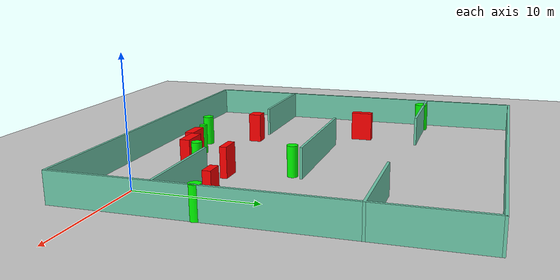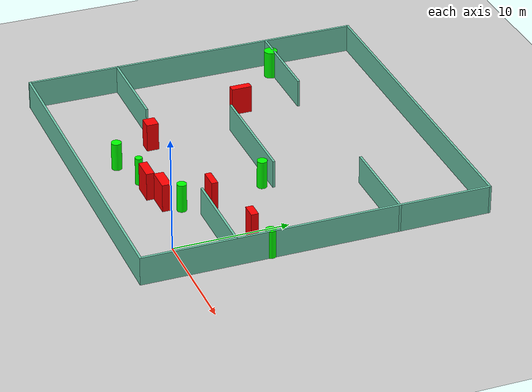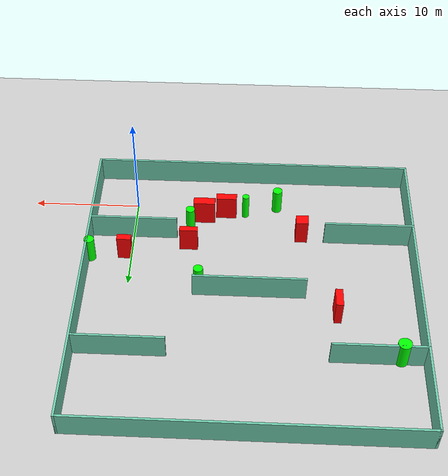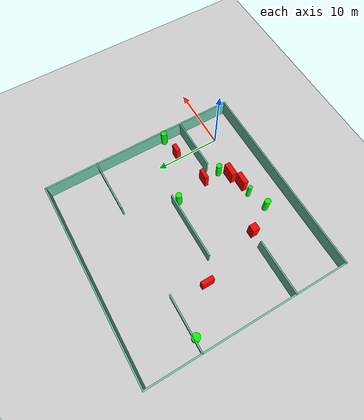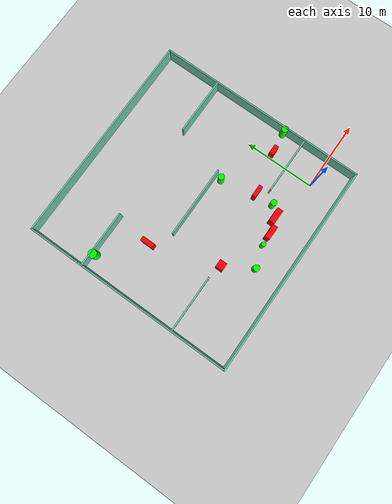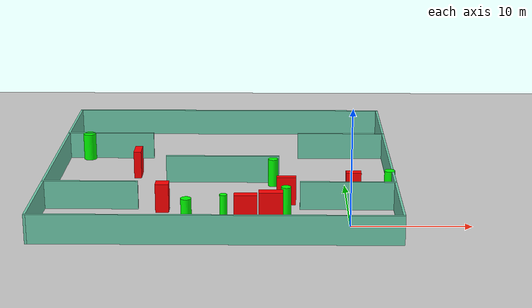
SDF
<sdf version="1.7">
 <world name="default">
  <light name="sun" type="directional">
   <pose>0 0 10 0 -0 0</pose>
   <diffuse>0.8 0.8 0.8 1</diffuse>
   <specular>0.2 0.2 0.2 1</specular>
   <attenuation>
    <range>1000</range>
    <constant>0.9</constant>
    <linear>0.01</linear>
    <quadratic>0.001</quadratic>
   </attenuation>
   <direction>-0.5 0.1 -0.9</direction>
   <spot><inner_angle>0</inner_angle><outer_angle>0</outer_angle><falloff>0</falloff></spot>
  </light>
  <model name="ground_plane">
   <static>1</static>
   <link name="link">
    <collision name="collision">
     <geometry><plane><normal>0 0 1</normal><size>100 100</size></plane></geometry>
     <surface>
      <contact><collide_bitmask>65535</collide_bitmask></contact>
      <friction><ode><mu>100</mu><mu2>50</mu2></ode></friction>
     </surface>
    </collision>
    <visual name="visual">
     <cast_shadows>0</cast_shadows>
     <geometry><plane><normal>0 0 1</normal><size>100 100</size></plane></geometry>
     <material>
      <script><uri>file://media/materials/scripts/gazebo.material</uri><name>Gazebo/Grey</name></script>
     </material>
    </visual>
   </link>
  </model>
  <gravity>0 0 -9.8</gravity>
  <magnetic_field>6e-06 2.3e-05 -4.2e-05</magnetic_field>
  <atmosphere type="adiabatic"/>
  <physics type="ode">
   <max_step_size>0.001</max_step_size>
   <real_time_factor>1</real_time_factor>
   <real_time_update_rate>1000</real_time_update_rate>
  </physics>
  <scene><ambient>0.4 0.4 0.4 1</ambient><background>0.7 0.7 0.7 1</background><shadows>1</shadows></scene>
  <spherical_coordinates>
   <surface_model>EARTH_WGS84</surface_model>
   <latitude_deg>0</latitude_deg>
   <longitude_deg>0</longitude_deg>
   <elevation>0</elevation>
   <heading_deg>0</heading_deg>
  </spherical_coordinates>
  <model name="my_base_walls">
   <link name="Wall_10">
    <collision name="Wall_10_Collision">
     <geometry><box><size>8.2 0.2 2.5</size></box></geometry>
     <pose>0 0 1.25 0 -0 0</pose>
    </collision>
    <visual name="Wall_10_Visual">
     <pose>0 0 1.25 0 -0 0</pose>
     <geometry><box><size>8.2 0.2 2.5</size></box></geometry>
     <material>
      <script><uri>file://media/materials/scripts/gazebo.material</uri><name>Gazebo/Grey</name></script>
      <ambient>0.435294 0.796078 0.67451 1</ambient>
     </material>
     <meta><layer>0</layer></meta>
    </visual>
    <pose>-11 -7 0 0 -0 0</pose>
   </link>
   <link name="Wall_12">
    <collision name="Wall_12_Collision">
     <geometry><box><size>8.2 0.2 2.5</size></box></geometry>
     <pose>0 0 1.25 0 -0 0</pose>
    </collision>
    <visual name="Wall_12_Visual">
     <pose>0 0 1.25 0 -0 0</pose>
     <geometry><box><size>8.2 0.2 2.5</size></box></geometry>
     <material>
      <script><uri>file://media/materials/scripts/gazebo.material</uri><name>Gazebo/Grey</name></script>
      <ambient>0.435294 0.796078 0.67451 1</ambient>
     </material>
     <meta><layer>0</layer></meta>
    </visual>
    <pose>-11 7 0 0 -0 0</pose>
   </link>
   <link name="Wall_14">
    <collision name="Wall_14_Collision">
     <geometry><box><size>8.2 0.2 2.5</size></box></geometry>
     <pose>0 0 1.25 0 -0 0</pose>
    </collision>
    <visual name="Wall_14_Visual">
     <pose>0 0 1.25 0 -0 0</pose>
     <geometry><box><size>8.2 0.2 2.5</size></box></geometry>
     <material>
      <script><uri>file://media/materials/scripts/gazebo.material</uri><name>Gazebo/Grey</name></script>
      <ambient>0.435294 0.796078 0.67451 1</ambient>
     </material>
     <meta><layer>0</layer></meta>
    </visual>
    <pose>11 7 0 0 -0 3.14159</pose>
   </link>
   <link name="Wall_16">
    <collision name="Wall_16_Collision">
     <geometry><box><size>10.2 0.2 2.5</size></box></geometry>
     <pose>0 0 1.25 0 -0 0</pose>
    </collision>
    <visual name="Wall_16_Visual">
     <pose>0 0 1.25 0 -0 0</pose>
     <geometry><box><size>10.2 0.2 2.5</size></box></geometry>
     <material>
      <script><uri>file://media/materials/scripts/gazebo.material</uri><name>Gazebo/Grey</name></script>
      <ambient>0.435294 0.796078 0.67451 1</ambient>
     </material>
     <meta><layer>0</layer></meta>
    </visual>
    <pose>0 0 0 0 -0 3.14159</pose>
   </link>
   <link name="Wall_2">
    <collision name="Wall_2_Collision">
     <geometry><box><size>30.2 0.2 2.5</size></box></geometry>
     <pose>0 0 1.25 0 -0 0</pose>
    </collision>
    <visual name="Wall_2_Visual">
     <pose>0 0 1.25 0 -0 0</pose>
     <geometry><box><size>30.2 0.2 2.5</size></box></geometry>
     <material>
      <script><uri>file://media/materials/scripts/gazebo.material</uri><name>Gazebo/Grey</name></script>
      <ambient>0.435294 0.796078 0.67451 1</ambient>
     </material>
     <meta><layer>0</layer></meta>
    </visual>
    <pose>0 -15 0 0 -0 3.14159</pose>
   </link>
   <link name="Wall_3">
    <collision name="Wall_3_Collision">
     <geometry><box><size>30.2 0.2 2.5</size></box></geometry>
     <pose>0 0 1.25 0 -0 0</pose>
    </collision>
    <visual name="Wall_3_Visual">
     <pose>0 0 1.25 0 -0 0</pose>
     <geometry><box><size>30.2 0.2 2.5</size></box></geometry>
     <material>
      <script><uri>file://media/materials/scripts/gazebo.material</uri><name>Gazebo/Grey</name></script>
      <ambient>0.435294 0.796078 0.67451 1</ambient>
     </material>
     <meta><layer>0</layer></meta>
    </visual>
    <pose>-15 0 0 0 -0 1.5708</pose>
   </link>
   <link name="Wall_4">
    <collision name="Wall_4_Collision">
     <geometry><box><size>30.2 0.2 2.5</size></box></geometry>
     <pose>0 0 1.25 0 -0 0</pose>
    </collision>
    <visual name="Wall_4_Visual">
     <pose>0 0 1.25 0 -0 0</pose>
     <geometry><box><size>30.2 0.2 2.5</size></box></geometry>
     <material>
      <script><uri>file://media/materials/scripts/gazebo.material</uri><name>Gazebo/Grey</name></script>
      <ambient>0.435294 0.796078 0.67451 1</ambient>
     </material>
     <meta><layer>0</layer></meta>
    </visual>
    <pose>0 15 0 0 -0 0</pose>
   </link>
   <link name="Wall_6">
    <collision name="Wall_6_Collision">
     <geometry><box><size>30.2 0.2 2.5</size></box></geometry>
     <pose>0 0 1.25 0 -0 0</pose>
    </collision>
    <visual name="Wall_6_Visual">
     <pose>0 0 1.25 0 -0 0</pose>
     <geometry><box><size>30.2 0.2 2.5</size></box></geometry>
     <material>
      <script><uri>file://media/materials/scripts/gazebo.material</uri><name>Gazebo/Grey</name></script>
      <ambient>0.435294 0.796078 0.67451 1</ambient>
     </material>
     <meta><layer>0</layer></meta>
    </visual>
    <pose>15 0 0 0 -0 1.5708</pose>
   </link>
   <link name="Wall_8">
    <collision name="Wall_8_Collision">
     <geometry><box><size>8.2 0.2 2.5</size></box></geometry>
     <pose>0 0 1.25 0 -0 0</pose>
    </collision>
    <visual name="Wall_8_Visual">
     <pose>0 0 1.25 0 -0 0</pose>
     <geometry><box><size>8.2 0.2 2.5</size></box></geometry>
     <material>
      <script><uri>file://media/materials/scripts/gazebo.material</uri><name>Gazebo/Grey</name></script>
      <ambient>0.435294 0.796078 0.67451 1</ambient>
     </material>
     <meta><layer>0</layer></meta>
    </visual>
    <pose>11 -7 0 0 -0 3.14159</pose>
   </link>
   <static>1</static>
   <pose>-11 11 0 0 -0 0</pose>
  </model>
  <model name="cylinder1">
   <static>1</static>
   <link name="link">
    <inertial>
     <mass>1</mass>
     <inertia><ixx>0.5</ixx><ixy>0</ixy><ixz>0</ixz><iyy>0.5</iyy><iyz>0</iyz><izz>1</izz></inertia>
    </inertial>
    <collision name="collision">
     <geometry><cylinder><radius>0.31962549544377</radius><length>2.5</length></cylinder></geometry>
    </collision>
    <visual name="visual">
     <geometry><cylinder><radius>0.31962549544377</radius><length>2.5</length></cylinder></geometry>
     <material>
      <ambient>0 1 0 1</ambient>
      <diffuse>0 1 0 1</diffuse>
      <specular>0.1 0.1 0.1 1</specular>
      <emissive>0 0 0 0</emissive>
     </material>
    </visual>
   </link>
   <pose>-10.478249548757141 0.7476535327143394 1.25 0 0 0</pose>
  </model>
  <model name="cylinder2">
   <static>1</static>
   <link name="link">
    <inertial>
     <mass>1</mass>
     <inertia><ixx>0.5</ixx><ixy>0</ixy><ixz>0</ixz><iyy>0.5</iyy><iyz>0</iyz><izz>1</izz></inertia>
    </inertial>
    <collision name="collision">
     <geometry><cylinder><radius>0.43627721116970136</radius><length>2.5</length></cylinder></geometry>
    </collision>
    <visual name="visual">
     <geometry><cylinder><radius>0.43627721116970136</radius><length>2.5</length></cylinder></geometry>
     <material>
      <ambient>0 1 0 1</ambient>
      <diffuse>0 1 0 1</diffuse>
      <specular>0.1 0.1 0.1 1</specular>
      <emissive>0 0 0 0</emissive>
     </material>
    </visual>
   </link>
   <pose>-6.42049077884359 10.157632980791355 1.25 0 0 0</pose>
  </model>
  <model name="cylinder3">
   <static>1</static>
   <link name="link">
    <inertial>
     <mass>1</mass>
     <inertia><ixx>0.5</ixx><ixy>0</ixy><ixz>0</ixz><iyy>0.5</iyy><iyz>0</iyz><izz>1</izz></inertia>
    </inertial>
    <collision name="collision">
     <geometry><cylinder><radius>0.5890241004689369</radius><length>2.5</length></cylinder></geometry>
    </collision>
    <visual name="visual">
     <geometry><cylinder><radius>0.5890241004689369</radius><length>2.5</length></cylinder></geometry>
     <material>
      <ambient>0 1 0 1</ambient>
      <diffuse>0 1 0 1</diffuse>
      <specular>0.1 0.1 0.1 1</specular>
      <emissive>0 0 0 0</emissive>
     </material>
    </visual>
   </link>
   <pose>-24.01401958855396 17.738605554042472 1.25 0 0 0</pose>
  </model>
  <model name="cylinder4">
   <static>1</static>
   <link name="link">
    <inertial>
     <mass>1</mass>
     <inertia><ixx>0.5</ixx><ixy>0</ixy><ixz>0</ixz><iyy>0.5</iyy><iyz>0</iyz><izz>1</izz></inertia>
    </inertial>
    <collision name="collision">
     <geometry><cylinder><radius>0.4572504899003882</radius><length>2.5</length></cylinder></geometry>
    </collision>
    <visual name="visual">
     <geometry><cylinder><radius>0.4572504899003882</radius><length>2.5</length></cylinder></geometry>
     <material>
      <ambient>0 1 0 1</ambient>
      <diffuse>0 1 0 1</diffuse>
      <specular>0.1 0.1 0.1 1</specular>
      <emissive>0 0 0 0</emissive>
     </material>
    </visual>
   </link>
   <pose>3.752023174166311 7.00321440909058 1.25 0 0 0</pose>
  </model>
  <model name="cylinder5">
   <static>1</static>
   <link name="link">
    <inertial>
     <mass>1</mass>
     <inertia><ixx>0.5</ixx><ixy>0</ixy><ixz>0</ixz><iyy>0.5</iyy><iyz>0</iyz><izz>1</izz></inertia>
    </inertial>
    <collision name="collision">
     <geometry><cylinder><radius>0.44600196106767226</radius><length>2.5</length></cylinder></geometry>
    </collision>
    <visual name="visual">
     <geometry><cylinder><radius>0.44600196106767226</radius><length>2.5</length></cylinder></geometry>
     <material>
      <ambient>0 1 0 1</ambient>
      <diffuse>0 1 0 1</diffuse>
      <specular>0.1 0.1 0.1 1</specular>
      <emissive>0 0 0 0</emissive>
     </material>
    </visual>
   </link>
   <pose>-13.503141288888123 -0.1990069948646016 1.25 0 0 0</pose>
  </model>
  <model name="cylinder6">
   <static>1</static>
   <link name="link">
    <inertial>
     <mass>1</mass>
     <inertia><ixx>0.5</ixx><ixy>0</ixy><ixz>0</ixz><iyy>0.5</iyy><iyz>0</iyz><izz>1</izz></inertia>
    </inertial>
    <collision name="collision">
     <geometry><cylinder><radius>0.41747761154085516</radius><length>2.5</length></cylinder></geometry>
    </collision>
    <visual name="visual">
     <geometry><cylinder><radius>0.41747761154085516</radius><length>2.5</length></cylinder></geometry>
     <material>
      <ambient>0 1 0 1</ambient>
      <diffuse>0 1 0 1</diffuse>
      <specular>0.1 0.1 0.1 1</specular>
      <emissive>0 0 0 0</emissive>
     </material>
    </visual>
   </link>
   <pose>-5.288166016263773 2.687517461206803 1.25 0 0 0</pose>
  </model>
  <model name="box1">
   <static>1</static>
   <link name="link">
    <inertial>
     <mass>1</mass>
     <inertia><ixx>0.083</ixx><ixy>0</ixy><ixz>0</ixz><iyy>0.083</iyy><iyz>0</iyz><izz>0.083</izz></inertia>
    </inertial>
    <collision name="collision">
     <geometry><box><size>1.3150357246815179 0.6416786925047114 2.5</size></box></geometry>
    </collision>
    <visual name="visual">
     <geometry><box><size>1.3150357246815179 0.6416786925047114 2.5</size></box></geometry>
     <material>
      <ambient>1 0 0 1</ambient>
      <diffuse>1 0 0 1</diffuse>
      <specular>0.1 0.1 0.1 1</specular>
      <emissive>0 0 0 0</emissive>
     </material>
    </visual>
    <sensor name="my_contact" type="contact">
     <contact><collision>box_collision</collision><topic>__default_topic__</topic></contact>
    </sensor>
   </link>
   <pose>0.5824758941759747 6.595892480704366 1.25 0 0 0</pose>
  </model>
  <model name="box2">
   <static>1</static>
   <link name="link">
    <inertial>
     <mass>1</mass>
     <inertia><ixx>0.083</ixx><ixy>0</ixy><ixz>0</ixz><iyy>0.083</iyy><iyz>0</iyz><izz>0.083</izz></inertia>
    </inertial>
    <collision name="collision">
     <geometry><box><size>1.6784849757199838 0.5567946603960265 2.5</size></box></geometry>
    </collision>
    <visual name="visual">
     <geometry><box><size>1.6784849757199838 0.5567946603960265 2.5</size></box></geometry>
     <material>
      <ambient>1 0 0 1</ambient>
      <diffuse>1 0 0 1</diffuse>
      <specular>0.1 0.1 0.1 1</specular>
      <emissive>0 0 0 0</emissive>
     </material>
    </visual>
    <sensor name="my_contact" type="contact">
     <contact><collision>box_collision</collision><topic>__default_topic__</topic></contact>
    </sensor>
   </link>
   <pose>-5.2690183605391745 5.259985948048968 1.25 0 0 0</pose>
  </model>
  <model name="box3">
   <static>1</static>
   <link name="link">
    <inertial>
     <mass>1</mass>
     <inertia><ixx>0.083</ixx><ixy>0</ixy><ixz>0</ixz><iyy>0.083</iyy><iyz>0</iyz><izz>0.083</izz></inertia>
    </inertial>
    <collision name="collision">
     <geometry><box><size>1.9334714849330779 0.7240058862388323 2.5</size></box></geometry>
    </collision>
    <visual name="visual">
     <geometry><box><size>1.9334714849330779 0.7240058862388323 2.5</size></box></geometry>
     <material>
      <ambient>1 0 0 1</ambient>
      <diffuse>1 0 0 1</diffuse>
      <specular>0.1 0.1 0.1 1</specular>
      <emissive>0 0 0 0</emissive>
     </material>
    </visual>
    <sensor name="my_contact" type="contact">
     <contact><collision>box_collision</collision><topic>__default_topic__</topic></contact>
    </sensor>
   </link>
   <pose>-8.647995542740663 0.824358301060069 1.25 0 0 0</pose>
  </model>
  <model name="box4">
   <static>1</static>
   <link name="link">
    <inertial>
     <mass>1</mass>
     <inertia><ixx>0.083</ixx><ixy>0</ixy><ixz>0</ixz><iyy>0.083</iyy><iyz>0</iyz><izz>0.083</izz></inertia>
    </inertial>
    <collision name="collision">
     <geometry><box><size>0.6585157447074315 1.8126102600203144 2.5</size></box></geometry>
    </collision>
    <visual name="visual">
     <geometry><box><size>0.6585157447074315 1.8126102600203144 2.5</size></box></geometry>
     <material>
      <ambient>1 0 0 1</ambient>
      <diffuse>1 0 0 1</diffuse>
      <specular>0.1 0.1 0.1 1</specular>
      <emissive>0 0 0 0</emissive>
     </material>
    </visual>
    <sensor name="my_contact" type="contact">
     <contact><collision>box_collision</collision><topic>__default_topic__</topic></contact>
    </sensor>
   </link>
   <pose>-18.82368023602613 12.922493960217768 1.25 0 0 0</pose>
  </model>
  <model name="box5">
   <static>1</static>
   <link name="link">
    <inertial>
     <mass>1</mass>
     <inertia><ixx>0.083</ixx><ixy>0</ixy><ixz>0</ixz><iyy>0.083</iyy><iyz>0</iyz><izz>0.083</izz></inertia>
    </inertial>
    <collision name="collision">
     <geometry><box><size>1.1365884173559029 1.0524907077149417 2.5</size></box></geometry>
    </collision>
    <visual name="visual">
     <geometry><box><size>1.1365884173559029 1.0524907077149417 2.5</size></box></geometry>
     <material>
      <ambient>1 0 0 1</ambient>
      <diffuse>1 0 0 1</diffuse>
      <specular>0.1 0.1 0.1 1</specular>
      <emissive>0 0 0 0</emissive>
     </material>
    </visual>
    <sensor name="my_contact" type="contact">
     <contact><collision>box_collision</collision><topic>__default_topic__</topic></contact>
    </sensor>
   </link>
   <pose>-15.795233469066591 3.6082845866891375 1.25 0 0 0</pose>
  </model>
  <model name="box6">
   <static>1</static>
   <link name="link">
    <inertial>
     <mass>1</mass>
     <inertia><ixx>0.083</ixx><ixy>0</ixy><ixz>0</ixz><iyy>0.083</iyy><iyz>0</iyz><izz>0.083</izz></inertia>
    </inertial>
    <collision name="collision">
     <geometry><box><size>2.0405463551306995 0.829404883065304 2.5</size></box></geometry>
    </collision>
    <visual name="visual">
     <geometry><box><size>2.0405463551306995 0.829404883065304 2.5</size></box></geometry>
     <material>
      <ambient>1 0 0 1</ambient>
      <diffuse>1 0 0 1</diffuse>
      <specular>0.1 0.1 0.1 1</specular>
      <emissive>0 0 0 0</emissive>
     </material>
    </visual>
    <sensor name="my_contact" type="contact">
     <contact><collision>box_collision</collision><topic>__default_topic__</topic></contact>
    </sensor>
   </link>
   <pose>-6.556472687389752 1.5024261719297538 1.25 0 0 0</pose>
  </model>
 </world>
</sdf>
